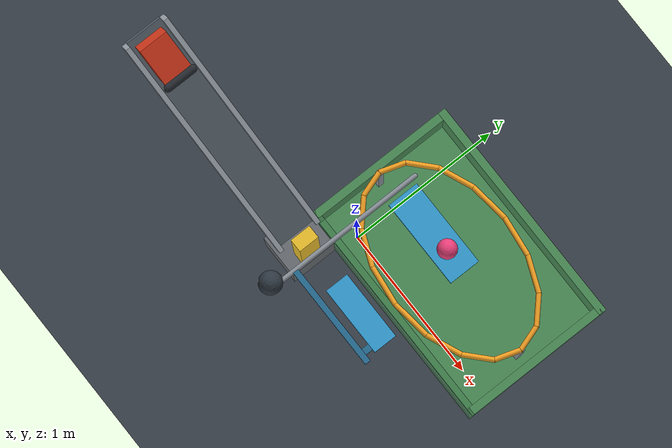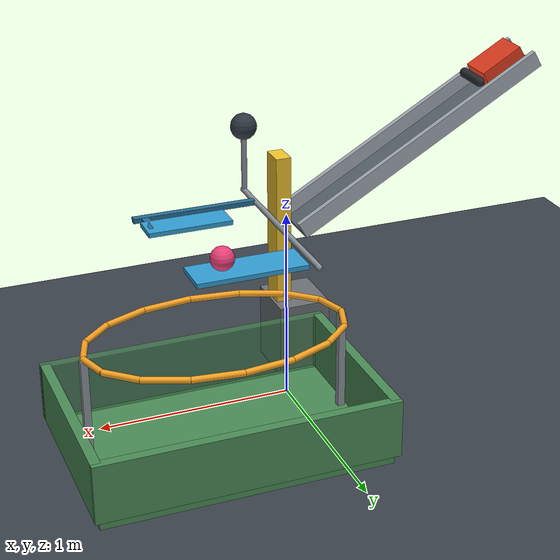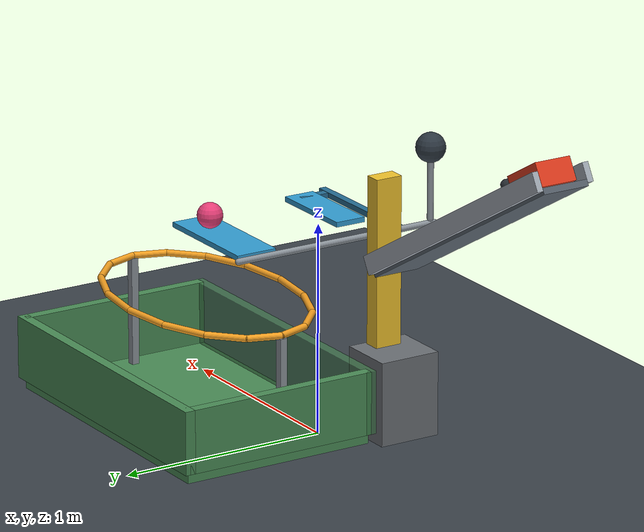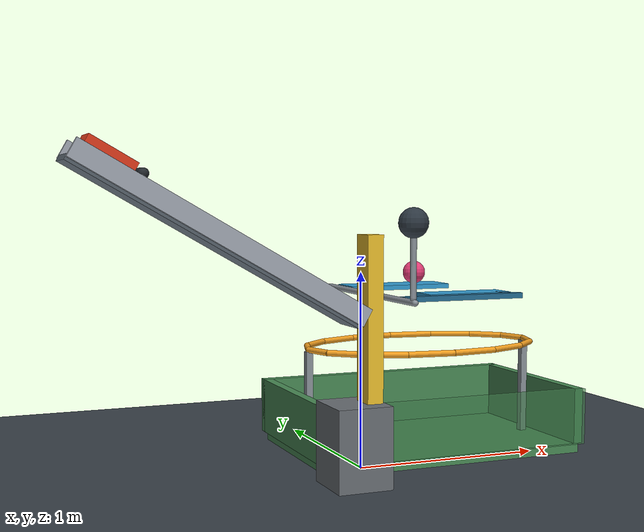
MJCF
<mujoco model="cart_domino_flap_ball">
  <compiler angle="radian" autolimits="true"/>
  <option timestep="0.002" gravity="0 0 -9.81" integrator="implicitfast" iterations="100" tolerance="1e-10"/>
  <size njmax="2000" nconmax="400"/>

  <visual>
    <headlight ambient="0.45 0.45 0.45" diffuse="0.7 0.7 0.7"/>
    <global azimuth="135" elevation="-25"/>
  </visual>

  <worldbody>
    <light name="overhead" pos="0 -1 4" dir="0 0 -1" diffuse="0.8 0.8 0.8"/>
    <camera name="overview" pos="2.7 -4 2.8" xyaxes="0.83 0.56 0 -0.25 0.37 0.895"/>

    <geom name="floor" type="plane" size="5 5 0.1" rgba="0.23 0.26 0.29 1" friction="1 0.02 0.005" solref="0.008 1"/>

    <!-- The slide joint guides the cart; these rail geoms visualize its path. -->
    <body name="rail" pos="-0.834026 -0.3 1.160718" quat="0.965925826 0 0.258819045 0">
      <geom name="rail_bed" type="box" size="0.76 0.115 0.015" contype="0" conaffinity="0" rgba="0.35 0.39 0.43 1"/>
      <geom name="rail_left_guide" type="box" pos="0 -0.13 0.045" size="0.76 0.015 0.045" contype="0" conaffinity="0" rgba="0.65 0.68 0.72 1"/>
      <geom name="rail_right_guide" type="box" pos="0 0.13 0.045" size="0.76 0.015 0.045" contype="0" conaffinity="0" rgba="0.65 0.68 0.72 1"/>
    </body>

    <!-- Gravity drives the cart through its 1.2 m slide range. -->
    <body name="cart" pos="-1.313641 -0.3 1.53" quat="0.965925826 0 0.258819045 0">
      <joint name="cart_slide" type="slide" axis="1 0 0" range="0 1.2" damping="0.05" frictionloss="0.02" solreflimit="0.006 1"/>
      <geom name="cart_chassis" type="box" size="0.12 0.09 0.055" mass="1.4" rgba="0.9 0.24 0.12 1" friction="0.5 0.01 0.001" solref="0.008 1"/>
      <geom name="cart_bumper" type="capsule" fromto="0.155 -0.085 0.025 0.155 0.085 0.025" size="0.025" mass="0.1" rgba="0.15 0.17 0.19 1" friction="0.5 0.01 0.001" solref="0.008 1"/>
    </body>

    <body name="domino_pedestal" pos="-0.1625 -0.3 0.2">
      <geom name="domino_pedestal_block" type="box" size="0.1375 0.15 0.2" rgba="0.42 0.44 0.46 1" friction="1.5 0.02 0.005" solref="0.008 1"/>
    </body>

    <body name="domino" pos="-0.08 -0.3 0.8">
      <freejoint name="domino_free"/>
      <geom name="domino_block" type="box" size="0.04 0.065 0.4" mass="2" rgba="0.95 0.77 0.18 1" friction="1.2 0.02 0.005" solref="0.008 1"/>
    </body>

    <!-- Hinge friction initially holds the hatch. The domino trips it;
         the upright offset weight drives the remaining downward rotation. -->
    <body name="flap" pos="0 0 0.9">
      <joint name="flap_hinge" type="hinge" axis="0 1 0" range="0 1.570796327" damping="0.12" frictionloss="1.3" solreflimit="0.006 1"/>
      <geom name="flap_release_pad" type="box" pos="0.32 0.3 0" size="0.28 0.1 0.012" mass="0.08" rgba="0.2 0.62 0.83 1" friction="0.65 0.01 0.002" solref="0.008 1"/>
      <geom name="flap_strike_pad" type="box" pos="0.42 -0.3 0" size="0.22 0.075 0.012" mass="0.08" rgba="0.2 0.62 0.83 1" friction="0.8 0.02 0.005" solref="0.008 1"/>
      <geom name="flap_side_link" type="box" pos="0.33 -0.44 0" size="0.33 0.018 0.013" mass="0.03" rgba="0.15 0.43 0.58 1" friction="0.7 0.01 0.002"/>
      <geom name="flap_cross_link" type="box" pos="0.6 -0.36 0" size="0.02 0.08 0.012" mass="0.015" rgba="0.15 0.43 0.58 1" friction="0.7 0.01 0.002"/>
      <geom name="flap_axle" type="capsule" fromto="0 -0.62 0 0 0.42 0" size="0.015" mass="0.025" contype="0" conaffinity="0" rgba="0.55 0.58 0.61 1"/>
      <geom name="flap_weight_stem" type="capsule" fromto="0 -0.6 0.02 0 -0.6 0.34" size="0.015" mass="0.03" rgba="0.55 0.58 0.61 1" friction="0.7 0.01 0.002"/>
      <geom name="flap_overcenter_weight" type="sphere" pos="0 -0.6 0.36" size="0.07" mass="1.2" rgba="0.18 0.22 0.26 1" friction="0.7 0.01 0.002"/>
    </body>

    <!-- Six-dimensional contacts activate torsional and rolling resistance. -->
    <body name="ball" pos="0.44 0.3 0.972">
      <freejoint name="ball_free"/>
      <geom name="ball_sphere" type="sphere" size="0.06" mass="0.05" condim="6" rgba="0.92 0.25 0.48 1" friction="0.9 0.025 0.015" solref="0.008 1" solimp="0.95 0.99 0.001"/>
    </body>

    <body name="ring" pos="0 0 0.58">
      <geom name="ring_00" type="capsule" fromto="1.13 0.3 0 1.080522 0.453073 0" size="0.016" rgba="0.96 0.63 0.13 1" friction="0.5 0.01 0.002" solref="0.008 1"/>
      <geom name="ring_01" type="capsule" fromto="1.080522 0.453073 0 0.939619 0.582843 0" size="0.016" rgba="0.96 0.63 0.13 1" friction="0.5 0.01 0.002" solref="0.008 1"/>
      <geom name="ring_02" type="capsule" fromto="0.939619 0.582843 0 0.728744 0.669552 0" size="0.016" rgba="0.96 0.63 0.13 1" friction="0.5 0.01 0.002" solref="0.008 1"/>
      <geom name="ring_03" type="capsule" fromto="0.728744 0.669552 0 0.48 0.7 0" size="0.016" rgba="0.96 0.63 0.13 1" friction="0.5 0.01 0.002" solref="0.008 1"/>
      <geom name="ring_04" type="capsule" fromto="0.48 0.7 0 0.231256 0.669552 0" size="0.016" rgba="0.96 0.63 0.13 1" friction="0.5 0.01 0.002" solref="0.008 1"/>
      <geom name="ring_05" type="capsule" fromto="0.231256 0.669552 0 0.020381 0.582843 0" size="0.016" rgba="0.96 0.63 0.13 1" friction="0.5 0.01 0.002" solref="0.008 1"/>
      <geom name="ring_06" type="capsule" fromto="0.020381 0.582843 0 -0.120522 0.453073 0" size="0.016" rgba="0.96 0.63 0.13 1" friction="0.5 0.01 0.002" solref="0.008 1"/>
      <geom name="ring_07" type="capsule" fromto="-0.120522 0.453073 0 -0.17 0.3 0" size="0.016" rgba="0.96 0.63 0.13 1" friction="0.5 0.01 0.002" solref="0.008 1"/>
      <geom name="ring_08" type="capsule" fromto="-0.17 0.3 0 -0.120522 0.146927 0" size="0.016" rgba="0.96 0.63 0.13 1" friction="0.5 0.01 0.002" solref="0.008 1"/>
      <geom name="ring_09" type="capsule" fromto="-0.120522 0.146927 0 0.020381 0.017157 0" size="0.016" rgba="0.96 0.63 0.13 1" friction="0.5 0.01 0.002" solref="0.008 1"/>
      <geom name="ring_10" type="capsule" fromto="0.020381 0.017157 0 0.231256 -0.069552 0" size="0.016" rgba="0.96 0.63 0.13 1" friction="0.5 0.01 0.002" solref="0.008 1"/>
      <geom name="ring_11" type="capsule" fromto="0.231256 -0.069552 0 0.48 -0.1 0" size="0.016" rgba="0.96 0.63 0.13 1" friction="0.5 0.01 0.002" solref="0.008 1"/>
      <geom name="ring_12" type="capsule" fromto="0.48 -0.1 0 0.728744 -0.069552 0" size="0.016" rgba="0.96 0.63 0.13 1" friction="0.5 0.01 0.002" solref="0.008 1"/>
      <geom name="ring_13" type="capsule" fromto="0.728744 -0.069552 0 0.939619 0.017157 0" size="0.016" rgba="0.96 0.63 0.13 1" friction="0.5 0.01 0.002" solref="0.008 1"/>
      <geom name="ring_14" type="capsule" fromto="0.939619 0.017157 0 1.080522 0.146927 0" size="0.016" rgba="0.96 0.63 0.13 1" friction="0.5 0.01 0.002" solref="0.008 1"/>
      <geom name="ring_15" type="capsule" fromto="1.080522 0.146927 0 1.13 0.3 0" size="0.016" rgba="0.96 0.63 0.13 1" friction="0.5 0.01 0.002" solref="0.008 1"/>
    </body>

    <body name="ring_support" pos="0 0 0">
      <geom name="ring_support_left" type="box" pos="-0.17 0.3 0.285" size="0.018 0.018 0.285" rgba="0.55 0.58 0.61 1" friction="0.7 0.01 0.002"/>
      <geom name="ring_support_right" type="box" pos="1.13 0.3 0.285" size="0.018 0.018 0.285" rgba="0.55 0.58 0.61 1" friction="0.7 0.01 0.002"/>
    </body>

    <body name="box" pos="0 0 0">
      <geom name="box_bottom" type="box" pos="0.5 0.35 0.025" size="0.725 0.475 0.025" condim="6" rgba="0.29 0.55 0.34 1" friction="1.2 0.04 0.025" solref="0.008 1" solimp="0.95 0.99 0.001"/>
      <geom name="box_left_wall" type="box" pos="-0.225 0.35 0.2" size="0.025 0.475 0.15" condim="6" rgba="0.29 0.55 0.34 1" friction="1.2 0.04 0.025" solref="0.008 1"/>
      <geom name="box_right_wall" type="box" pos="1.225 0.35 0.2" size="0.025 0.475 0.15" condim="6" rgba="0.29 0.55 0.34 1" friction="1.2 0.04 0.025" solref="0.008 1"/>
      <geom name="box_front_wall" type="box" pos="0.5 -0.125 0.2" size="0.75 0.025 0.15" condim="6" rgba="0.29 0.55 0.34 0.65" friction="1.2 0.04 0.025" solref="0.008 1"/>
      <geom name="box_back_wall" type="box" pos="0.5 0.825 0.2" size="0.75 0.025 0.15" condim="6" rgba="0.29 0.55 0.34 1" friction="1.2 0.04 0.025" solref="0.008 1"/>
    </body>
  </worldbody>

  <keyframe>
    <key name="start" qpos="0 -0.08 -0.3 0.8 1 0 0 0 0 0.44 0.3 0.972 1 0 0 0"/>
  </keyframe>
</mujoco>
